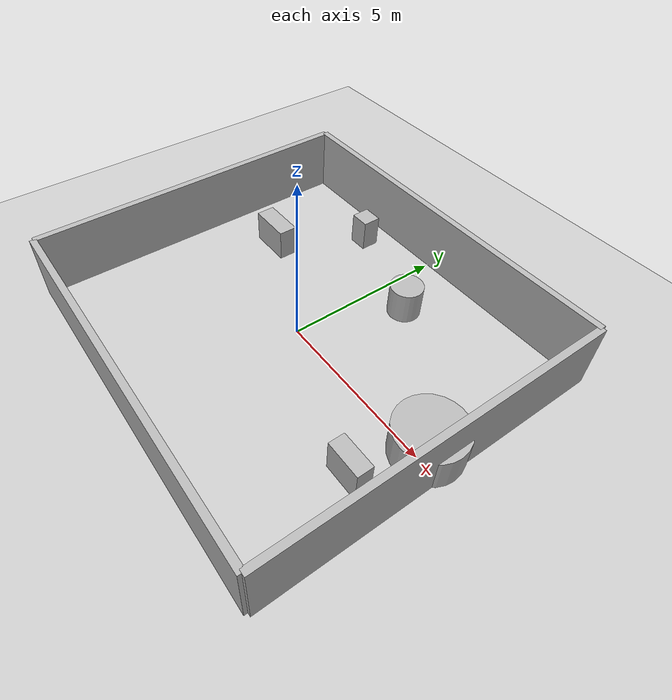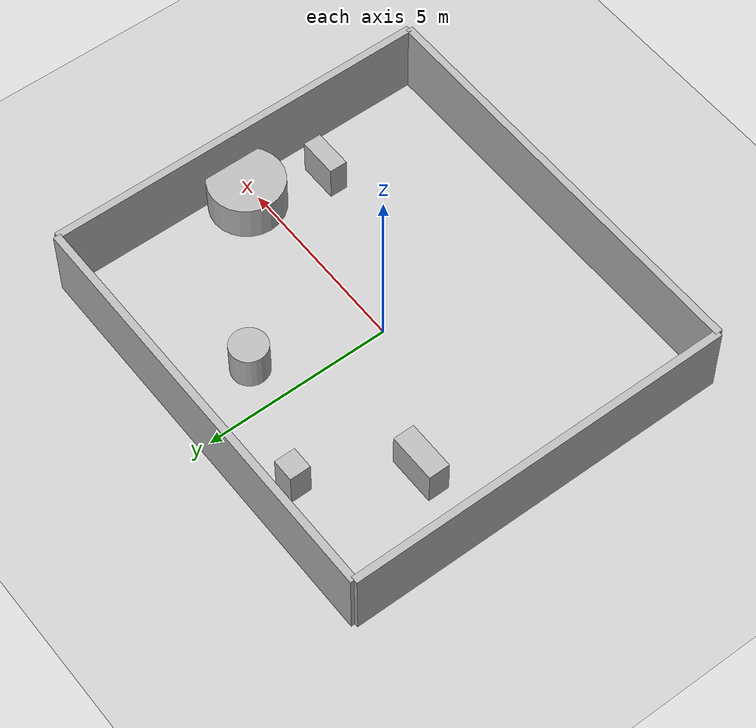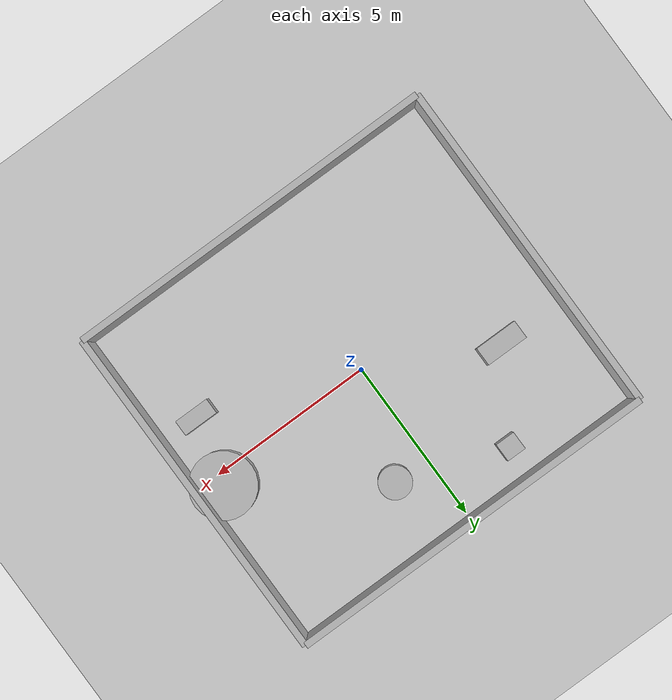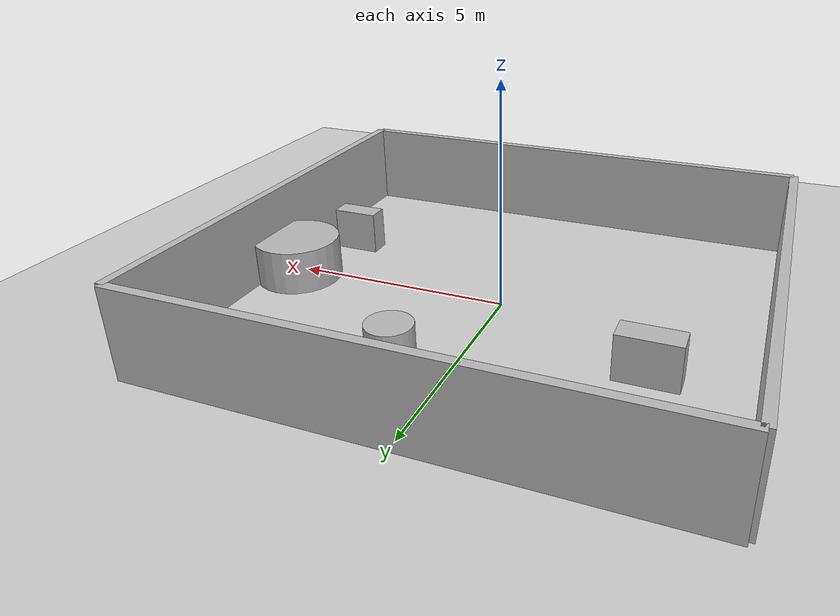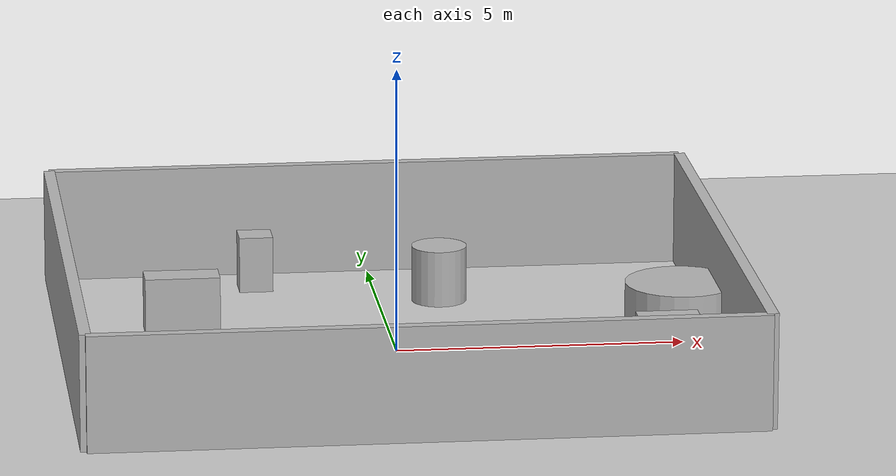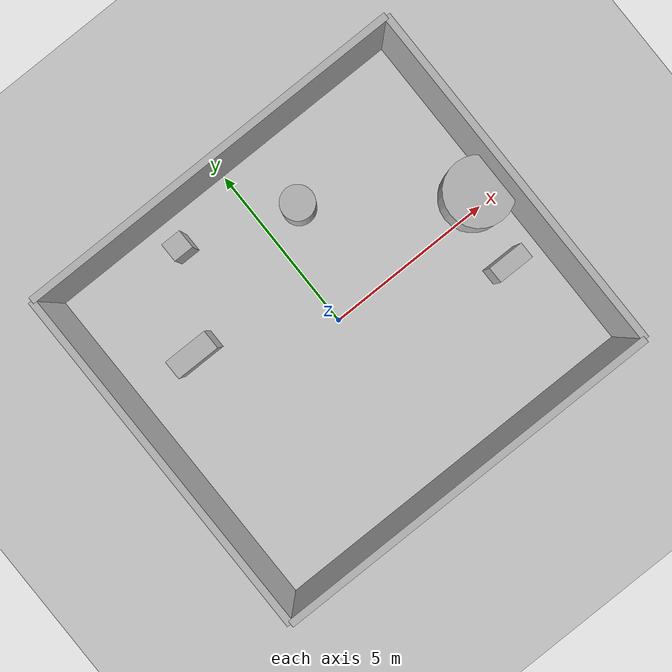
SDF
<?xml version="1.0"?>
<sdf version="1.6">
  <world name="env_28">

    <include><uri>model://ground_plane</uri></include>
    <include><uri>model://sun</uri></include>

    <!-- WALLS -->
    <model name="wall_north"><static>true</static><pose>0 5.1811160881553455 1 0 0 0</pose>
      <link name="link"><collision name="collision">
        <geometry><box><size>11.388068219268334 0.2 2</size></box></geometry>
      </collision><visual name="visual">
        <geometry><box><size>11.388068219268334 0.2 2</size></box></geometry>
      </visual></link>
    </model>

    <model name="wall_south"><static>true</static><pose>0 -5.1811160881553455 1 0 0 0</pose>
      <link name="link"><collision name="collision">
        <geometry><box><size>11.388068219268334 0.2 2</size></box></geometry>
      </collision><visual name="visual">
        <geometry><box><size>11.388068219268334 0.2 2</size></box></geometry>
      </visual></link>
    </model>

    <model name="wall_east"><static>true</static><pose>5.694034109634167 0 1 0 0 1.57</pose>
      <link name="link"><collision name="collision">
        <geometry><box><size>10.362232176310691 0.2 2</size></box></geometry>
      </collision><visual name="visual">
        <geometry><box><size>10.362232176310691 0.2 2</size></box></geometry>
      </visual></link>
    </model>

    <model name="wall_west"><static>true</static><pose>-5.694034109634167 0 1 0 0 1.57</pose>
      <link name="link"><collision name="collision">
        <geometry><box><size>10.362232176310691 0.2 2</size></box></geometry>
      </collision><visual name="visual">
        <geometry><box><size>10.362232176310691 0.2 2</size></box></geometry>
      </visual></link>
    </model>

    <!-- SENSOR -->

    <model name="lidar_sensor">
      <static>true</static>
      <pose>4.112798642741003 4.370891972587167 0.4 0 0 0</pose>
      <link name="link">
        <sensor name="lidar" type="ray">
          <pose>0 0 0 0 0 0</pose>
          <visualize>true</visualize>
          <always_on>true</always_on>
          <update_rate>10</update_rate>
          <ray>
            <scan><horizontal>
              <samples>90</samples>
              <resolution>1</resolution>
              <min_angle>-3.14159</min_angle>
              <max_angle>3.14159</max_angle>
            </horizontal></scan>
            <range><min>0.15</min><max>20.0</max><resolution>0.01</resolution></range>
          </ray>
          <plugin name="lidar_plugin" filename="liblidar_plugin.so"/>
        </sensor>
      </link>
    </model>

    <!-- OBSTACLES -->

    <model name="obstacle_0">
      <static>true</static>
      <pose>5.000759476236354 0.3202818923994597 0.5 0 0 0</pose>
      <link name="link">
        <collision name="collision">
          <geometry><cylinder><radius>0.98</radius><length>1.0</length></cylinder></geometry>
        </collision>
        <visual name="visual">
          <geometry><cylinder><radius>0.98</radius><length>1.0</length></cylinder></geometry>
        </visual>
      </link>
    </model>

    <model name="obstacle_1">
      <static>true</static>
      <pose>1.088207911489179 3.081357811945101 0.5 0 0 0</pose>
      <link name="link">
        <collision name="collision">
          <geometry><cylinder><radius>0.49</radius><length>1.0</length></cylinder></geometry>
        </collision>
        <visual name="visual">
          <geometry><cylinder><radius>0.49</radius><length>1.0</length></cylinder></geometry>
        </visual>
      </link>
    </model>

    <model name="obstacle_2">
      <static>true</static>
      <pose>4.4819114728403555 -1.6664374755423497 0.5 0 0 0</pose>
      <link name="link">
        <collision name="collision">
          <geometry><box><size>1.07 0.48 1.0</size></box></geometry>
        </collision>
        <visual name="visual">
          <geometry><box><size>1.07 0.48 1.0</size></box></geometry>
        </visual>
      </link>
    </model>

    <model name="obstacle_3">
      <static>true</static>
      <pose>-3.594064028715617 1.7048007664066205 0.5 0 0 0</pose>
      <link name="link">
        <collision name="collision">
          <geometry><box><size>1.31 0.57 1.0</size></box></geometry>
        </collision>
        <visual name="visual">
          <geometry><box><size>1.31 0.57 1.0</size></box></geometry>
        </visual>
      </link>
    </model>

    <model name="obstacle_4">
      <static>true</static>
      <pose>-2.092706116769824 4.17958568013351 0.5 0 0 0</pose>
      <link name="link">
        <collision name="collision">
          <geometry><box><size>0.6 0.56 1.0</size></box></geometry>
        </collision>
        <visual name="visual">
          <geometry><box><size>0.6 0.56 1.0</size></box></geometry>
        </visual>
      </link>
    </model>

  </world>
</sdf>
